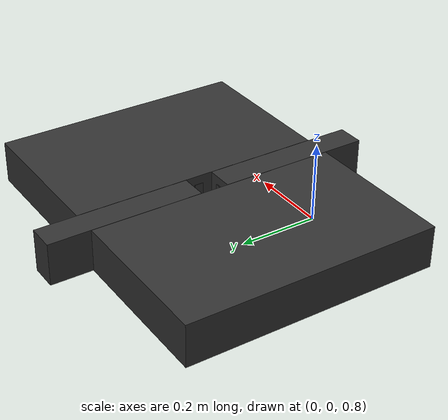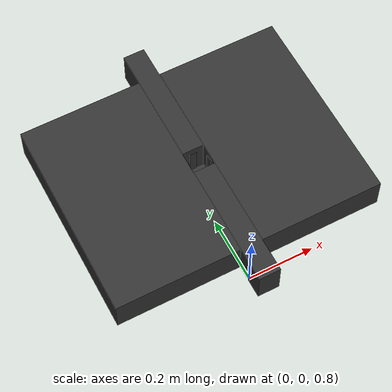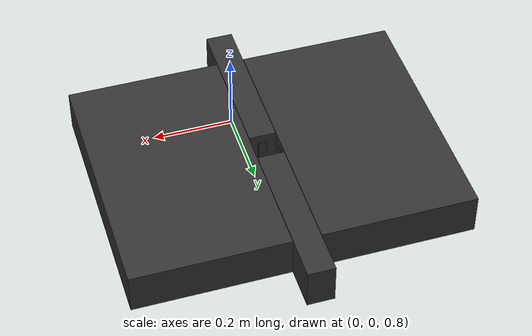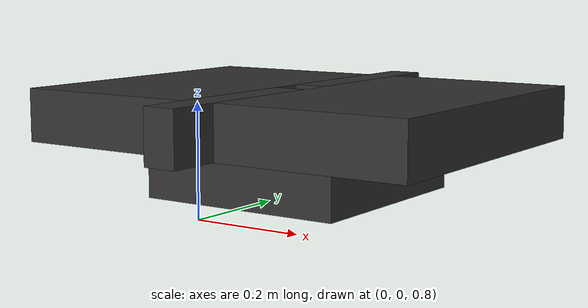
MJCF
<mujoco model="box">
    <worldbody>
      <body name="box" pos='0 0 1.4'>
        <body name="g1" pos="0.034 0.3 -0.47" axisangle="0 1 0 0.05">
            <geom name="g1" rgba="0.2 0.2 0.2 1" type="box" size="0.003 0.01 0.05"  />
        </body>

        <body name="g2" pos="-0.034 0.3 -0.47" axisangle="0 1 0 -0.05">
            <geom name="g2" rgba="0.2 0.2 0.2 1" type="box" size="0.003 0.01 0.05"  />
        </body>

        <body name="g3" pos="0.0 0.334 -0.47" axisangle="1 0 0 -0.05">
            <geom name="g3" rgba="0.2 0.2 0.2 1" type="box" size="0.01 0.003 0.05"  />
        </body>

        <body name="g4" pos="0.0 0.266 -0.47" axisangle="1 0 0 0.05">
            <geom name="g4" rgba="0.2 0.2 0.2 1" type="box" size="0.01 0.003 0.05"  />
        </body>

        <body name="fl" pos="0.0 0.3 -0.55">
            <geom name="fl" rgba="0.2 0.2 0.2 1" type="box" size="0.2 0.2 0.05"  />
        </body>

        <body name="w1" pos="0.216 0.3 -0.45">
            <geom name="w1" rgba="0.2 0.2 0.2 1" type="box" size="0.183 0.3 0.05"  />
        </body>

        <body name="w2" pos="-0.216 0.3 -0.45">
            <geom name="w2" rgba="0.2 0.2 0.2 1" type="box" size="0.183 0.3 0.05"  />
        </body>

        <body name="w3" pos="0.0 0.516 -0.45">
            <geom name="w3" rgba="0.2 0.2 0.2 1" type="box" size="0.032 0.183 0.05"  />
        </body>

        <body name="w4" pos="0.0 0.084 -0.45">
            <geom name="w4" rgba="0.2 0.2 0.2 1" type="box" size="0.032 0.183 0.05"  />
        </body>
      </body>
    </worldbody>
</mujoco>
